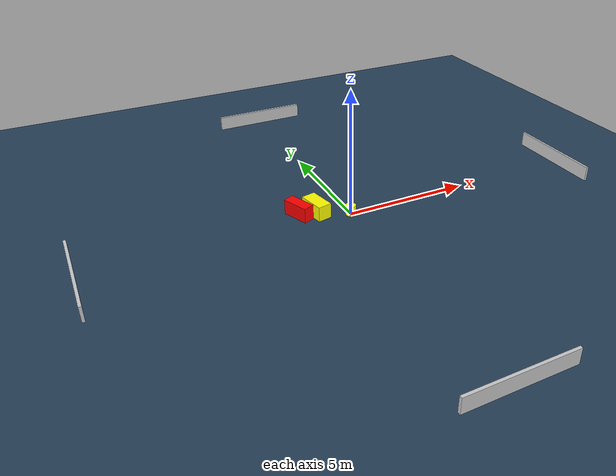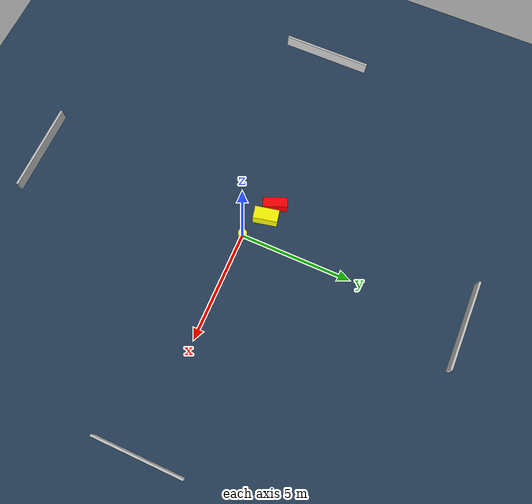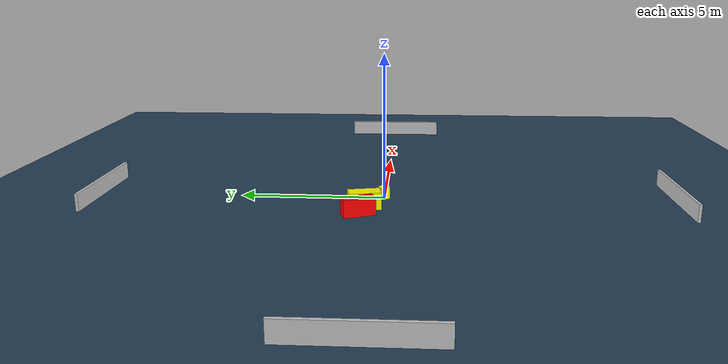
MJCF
<?xml version="1.0" ?>
<mujoco model="generated_environment">
  <option timestep="0.01" integrator="RK4" cone="elliptic"/>
  <default>
    <geom density="1"/>
  </default>
  <asset>
    <texture builtin="gradient" height="3072" name="skybox" rgb1="0.3 0.5 0.7" rgb2="0 0 0" type="skybox" width="512"/>
    <texture builtin="checker" height="300" name="groundplane" rgb1="0.2 0.3 0.4" rgb2="0.1 0.2 0.3" type="2d" width="300"/>
    <material name="groundplane" reflectance="0.2" texrepeat="5 5" texture="groundplane"/>
  </asset>
  <worldbody>
    <light dir="0 0 -1" directional="true" pos="0 0 1.5"/>
    <geom condim="3" friction="0.5 0.005 0.001" material="groundplane" name="floor" pos="0 0 0" size="0 0 0.05" type="plane"/>
    <body name="walls">
      <geom name="wall_1" condim="4" pos="-10.0 0.0 0.3" rgba="0.800000011920929 0.800000011920929 0.800000011920929 1.0" size="0.05 2.0 0.3" type="box"/>
      <geom name="wall_2" condim="4" pos="10.0 0.0 0.3" rgba="0.800000011920929 0.800000011920929 0.800000011920929 1.0" size="0.05 2.0 0.3" type="box"/>
      <geom name="wall_3" condim="4" pos="0.0 -10.0 0.3" rgba="0.800000011920929 0.800000011920929 0.800000011920929 1.0" size="2.0 0.05 0.3" type="box"/>
      <geom name="wall_4" condim="4" pos="0.0 10.0 0.3" rgba="0.800000011920929 0.800000011920929 0.800000011920929 1.0" size="2.0 0.05 0.3" type="box"/>
    </body>
    <body name="robot">
      <joint name="joint_x" type="slide" pos="0 0 0" axis="1 0 0"/>
      <joint name="joint_y" type="slide" pos="0 0 0" axis="0 1 0"/>
      <geom name="robot" type="cylinder" pos="0.0 0.0 0.2" size="0.2 0.2 0.0" mass="5.0" friction="1.0 0.005 0.0001" condim="4" rgba="1.0 1.0 0.0 1.0"/>
    </body>
    <body name="obstacle_1_movable">
      <geom name="obstacle_1_movable" condim="4" pos="-1.1492348962142058 0.6117728111142309 0.3" euler="0 0 282.0861949894979" friction="0.0 0.005 0.001" rgba="1.0 1.0 0.0 1.0" size="0.5403862211430188 0.27987910180304326 0.3" type="box" mass="0.1"/>
      <joint type="free"/>
    </body>
    <body name="obstacle_2_static">
      <geom name="obstacle_2_static" condim="4" pos="-1.8220495066203906 0.7570624843760237 0.3" euler="0 0 112.10812649946737" friction="0.0 0.005 0.001" rgba="1.0 0.0 0.0 1.0" size="0.5436426498420205 0.22234370722227118 0.3" type="box"/>
    </body>
  </worldbody>
  <actuator>
    <motor name="actuator_x" joint="joint_x" gear="1" ctrlrange="-1 1"/>
    <motor name="actuator_y" joint="joint_y" gear="1" ctrlrange="-1 1"/>
  </actuator>
</mujoco>
